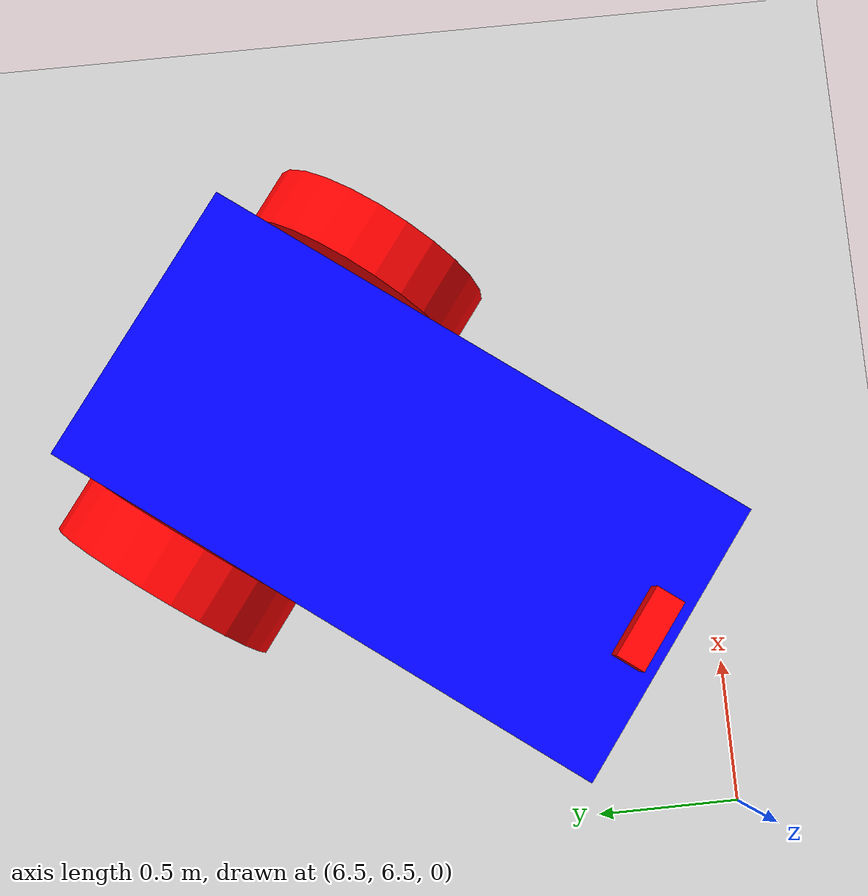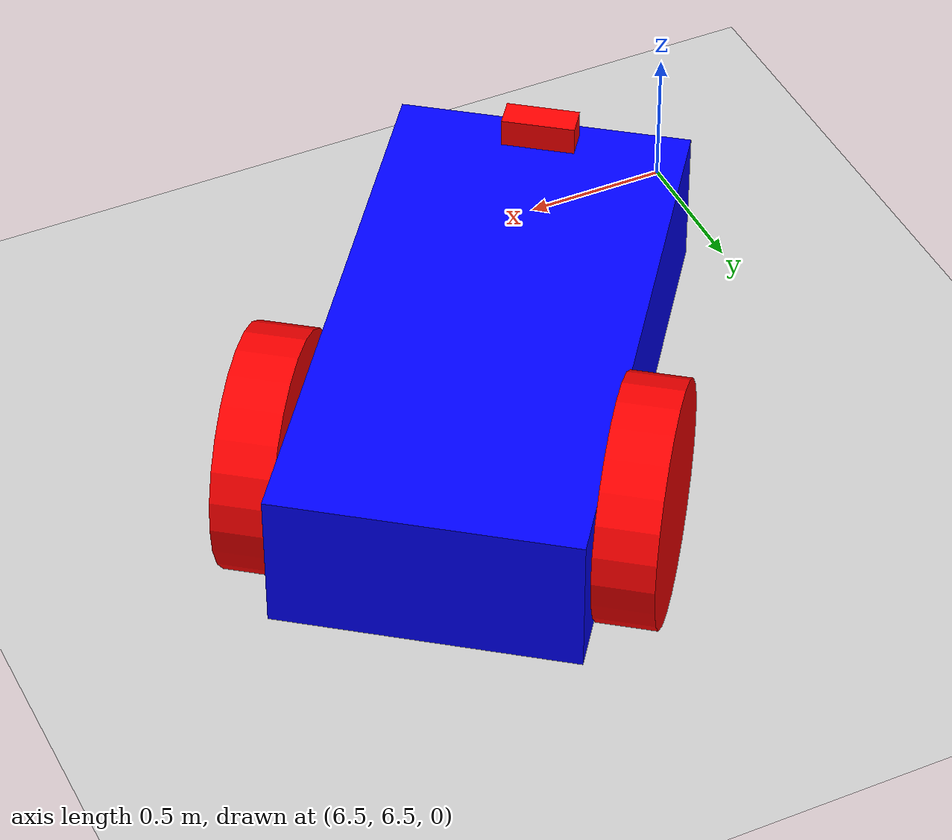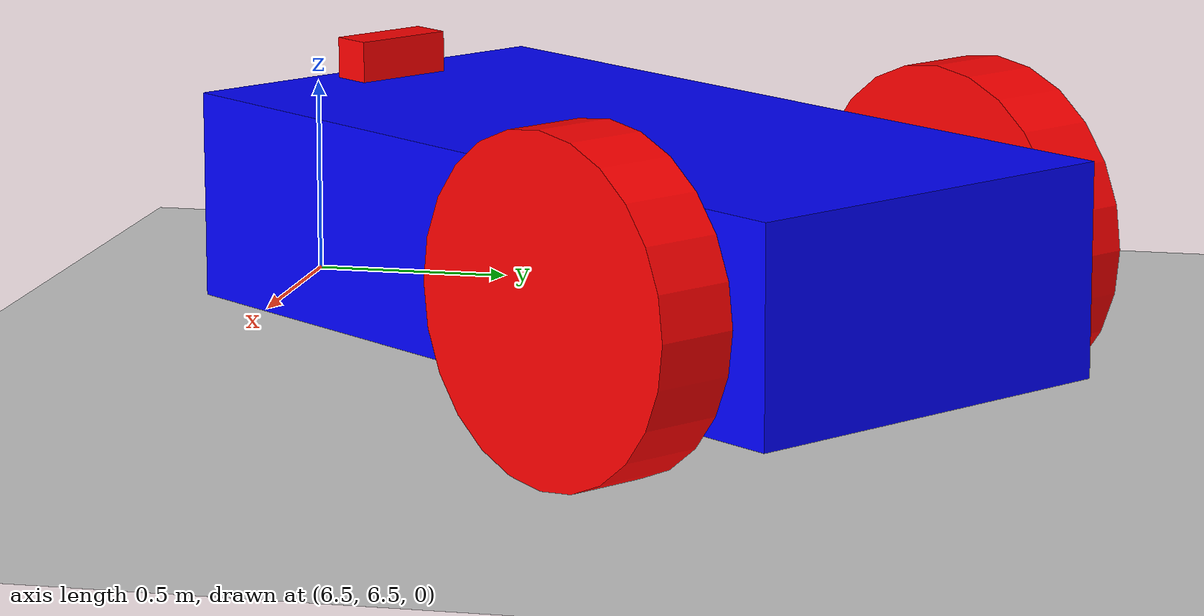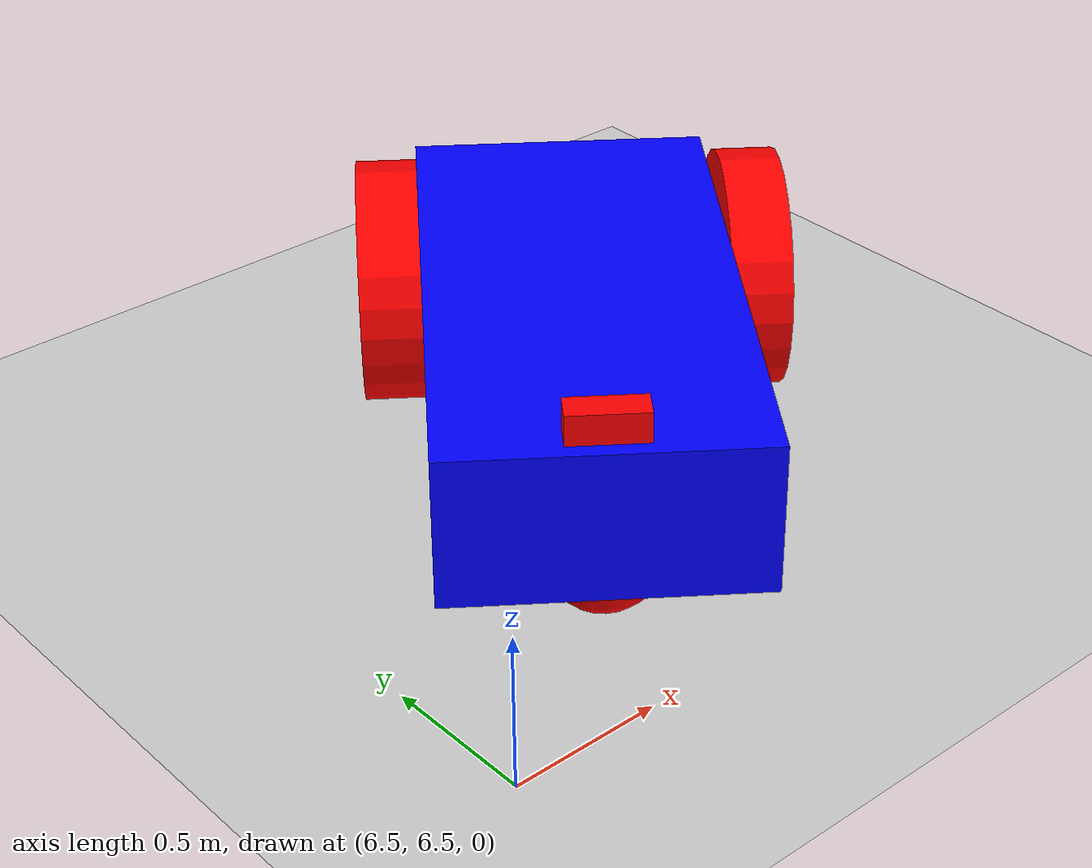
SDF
<?xml version="1.0" ?>
<sdf version="1.8">
    <world name="car_world">
        <physics name="1ms" type="ignored">
            <max_step_size>0.001</max_step_size>
            <real_time_factor>1.0</real_time_factor>
        </physics>

        <plugin
            filename="gz-sim-physics-system"
            name="gz::sim::systems::Physics">
        </plugin>
        <plugin
            filename="gz-sim-user-commands-system"
            name="gz::sim::systems::UserCommands">
        </plugin>
        <plugin
            filename="gz-sim-scene-broadcaster-system"
            name="gz::sim::systems::SceneBroadcaster">
        </plugin>
        <plugin
            filename="gz-sim-sensors-system"
            name="gz::sim::systems::Sensors">
            <render_engine>ogre2</render_engine>
        </plugin>

        <light type="directional" name="sun">
            <cast_shadows>true</cast_shadows>
            <pose>0 0 10 0 0 0</pose>
            <diffuse>0.8 0.8 0.8 1</diffuse>
            <specular>0.2 0.2 0.2 1</specular>
            <attenuation>
                <range>1000</range>
                <constant>0.9</constant>
                <linear>0.01</linear>
                <quadratic>0.001</quadratic>
            </attenuation>
            <direction>-0.5 0.1 -0.9</direction>
        </light>

        <model name="ground_plane">
            <static>true</static>
            <link name="link">
                <collision name="collision">
                    <geometry>
                        <plane>
                            <normal>0 0 1</normal>
                        </plane>
                    </geometry>
                </collision>
                <visual name="visual">
                    <geometry>
                        <plane>
                            <normal>0 0 1</normal>
                            <size>100 100</size>
                        </plane>
                    </geometry>
                    <material>
                        <ambient>0.8 0.8 0.8 1</ambient>
                        <diffuse>0.8 0.8 0.8 1</diffuse>
                        <specular>0.8 0.8 0.8 1</specular>
                    </material>
                </visual>
            </link>
        </model>

        <model name='vehicle_blue' canonical_link='chassis'>
            <pose relative_to='world'>8 8 0 0 0 180</pose>

            <link name='chassis'>
                <pose relative_to='__model__'>0.5 0 0.4 0 0 0</pose>
                <inertial>
                    <mass>1.14395</mass>
                    <inertia>
                        <ixx>0.095329</ixx>
                        <ixy>0</ixy>
                        <ixz>0</ixz>
                        <iyy>0.381317</iyy>
                        <iyz>0</iyz>
                        <izz>0.476646</izz>
                    </inertia>
                </inertial>
                <visual name='visual'>
                    <geometry>
                        <box>
                            <size>2.0 1.0 0.5</size>
                        </box>
                    </geometry>
                    <material>
                        <ambient>0.0 0.0 1.0 1</ambient>
                        <diffuse>0.0 0.0 1.0 1</diffuse>
                        <specular>0.0 0.0 1.0 1</specular>
                    </material>
                </visual>
                <collision name='collision'>
                    <geometry>
                        <box>
                            <size>2.0 1.0 0.5</size>
                        </box>
                    </geometry>
                </collision>

                <sensor name="imu_sensor" type="imu">
                    <always_on>1</always_on>
                    <update_rate>100</update_rate>
                    <visualize>true</visualize>
                    <topic>imu</topic>
                </sensor>

                <sensor name='gpu_lidar' type='gpu_lidar'> <pose relative_to='lidar_frame'>0 0 0 0 0 0</pose>
                    <topic>lidar</topic>
                    <update_rate>10</update_rate>
                    <ray>
                        <scan>
                            <horizontal>
                                <samples>640</samples>
                                <resolution>1</resolution>
                                <min_angle>-1.396263</min_angle>
                                <max_angle>1.396263</max_angle>
                            </horizontal>
                            <vertical>
                                <samples>1</samples>
                                <resolution>0.01</resolution>
                                <min_angle>0</min_angle>
                                <max_angle>0</max_angle>
                            </vertical>
                        </scan>
                        <range>
                            <min>0.08</min>
                            <max>10.0</max>
                            <resolution>0.01</resolution>
                        </range>
                    </ray>
                    <always_on>1</always_on>
                    <visualize>true</visualize>
                </sensor>
            </link>

            <link name='left_wheel'>
                <pose relative_to="chassis">-0.5 0.6 0 -1.5707 0 0</pose>
                <inertial>
                    <mass>1</mass>
                    <inertia>
                        <ixx>0.043333</ixx>
                        <ixy>0</ixy>
                        <ixz>0</ixz>
                        <iyy>0.043333</iyy>
                        <iyz>0</iyz>
                        <izz>0.08</izz>
                    </inertia>
                </inertial>
                <visual name='visual'>
                    <geometry>
                        <cylinder>
                            <radius>0.4</radius>
                            <length>0.2</length>
                        </cylinder>
                    </geometry>
                    <material>
                        <ambient>1.0 0.0 0.0 1</ambient>
                        <diffuse>1.0 0.0 0.0 1</diffuse>
                        <specular>1.0 0.0 0.0 1</specular>
                    </material>
                </visual>
                <collision name='collision'>
                    <geometry>
                        <cylinder>
                            <radius>0.4</radius>
                            <length>0.2</length>
                        </cylinder>
                    </geometry>
                </collision>
            </link>

            <link name='right_wheel'>
                <pose relative_to="chassis">-0.5 -0.6 0 -1.5707 0 0</pose>
                <inertial>
                    <mass>1</mass>
                    <inertia>
                        <ixx>0.043333</ixx>
                        <ixy>0</ixy>
                        <ixz>0</ixz>
                        <iyy>0.043333</iyy>
                        <iyz>0</iyz>
                        <izz>0.08</izz>
                    </inertia>
                </inertial>
                <visual name='visual'>
                    <geometry>
                        <cylinder>
                            <radius>0.4</radius>
                            <length>0.2</length>
                        </cylinder>
                    </geometry>
                    <material>
                        <ambient>1.0 0.0 0.0 1</ambient>
                        <diffuse>1.0 0.0 0.0 1</diffuse>
                        <specular>1.0 0.0 0.0 1</specular>
                    </material>
                </visual>
                <collision name='collision'>
                    <geometry>
                        <cylinder>
                            <radius>0.4</radius>
                            <length>0.2</length>
                        </cylinder>
                    </geometry>
                </collision>
            </link>

            <link name='caster'>
                <pose relative_to='caster_frame'/>
                <inertial>
                    <mass>1</mass>
                    <inertia>
                        <ixx>0.016</ixx>
                        <ixy>0</ixy>
                        <ixz>0</ixz>
                        <iyy>0.016</iyy>
                        <iyz>0</iyz>
                        <izz>0.016</izz>
                    </inertia>
                </inertial>
                <visual name='visual'>
                    <geometry>
                        <sphere>
                            <radius>0.2</radius>
                        </sphere>
                    </geometry>
                    <material>
                        <ambient>1.0 0 0.0 1</ambient>
                        <diffuse>1.0 0 0.0 1</diffuse>
                        <specular>1.0 0 0.0 1</specular>
                    </material>
                </visual>
                <collision name='collision'>
                    <geometry>
                        <sphere>
                            <radius>0.2</radius>
                        </sphere>
                    </geometry>
                </collision>
            </link>

            <link name="cameraMIA">
                <pose relative_to="camera_frame">0 0 0 0 0 0</pose>
                <inertial>
                    <mass>0.1</mass>
                    <inertia>
                        <ixx>0.0001</ixx>
                        <ixy>0</ixy>
                        <ixz>0</ixz>
                        <iyy>0.0001</iyy>
                        <iyz>0</iyz>
                        <izz>0.0001</izz>
                    </inertia>
                </inertial>
                <visual name="visual">
                    <geometry>
                        <box>
                            <size>0.1 0.25 0.1</size>
                        </box>
                    </geometry>
                    <material>
                        <ambient>1 0 0.0 1</ambient>
                        <diffuse>1 0 0.0 1</diffuse>
                        <specular>1.0 0.0 1</specular>
                    </material>
                </visual>
                <collision name="collision">
                    <geometry>
                        <box>
                            <size>0.1 0.25 0.1</size>
                        </box>
                    </geometry>
                </collision>
                <sensor type="camera" name="camera_sensor">
                    <pose>0 0 0 0 0 0</pose>
                    <camera>
                        <horizontal_fov>1.047</horizontal_fov>
                        <image>
                            <width>320</width>
                            <height>240</height>
                        </image>
                        <clip>
                            <near>0.1</near>
                            <far>100</far>
                        </clip>
                        <camera_info_topic>camera/camera_info</camera_info_topic>
                    </camera>
                    <always_on>1</always_on>
                    <update_rate>30</update_rate>
                    <visualize>true</visualize>
                    <topic>camera/image</topic>
                </sensor>
            </link>

            <frame name="caster_frame" attached_to='chassis'>
                <pose>0.8 0 -0.2 0 0 0</pose>
            </frame>

            <frame name="camera_frame" attached_to='chassis'>
                <pose>0.9 0 0.30 0 0 0</pose>
            </frame>

            <joint name='left_wheel_joint' type='revolute'>
                <pose relative_to='left_wheel'/>
                <parent>chassis</parent>
                <child>left_wheel</child>
                <axis>
                    <xyz expressed_in='__model__'>0 1 0</xyz>
                    <limit>
                        <lower>-1.79769e+308</lower>
                        <upper>1.79769e+308</upper>
                    </limit>
                </axis>
            </joint>

            <joint name='right_wheel_joint' type='revolute'>
                <pose relative_to='right_wheel'/>
                <parent>chassis</parent>
                <child>right_wheel</child>
                <axis>
                    <xyz expressed_in='__model__'>0 1 0</xyz>
                    <limit>
                        <lower>-1.79769e+308</lower>
                        <upper>1.79769e+308</upper>
                    </limit>
                </axis>
            </joint>

            <joint name='caster_wheel' type='ball'>
                <parent>chassis</parent>
                <child>caster</child>
            </joint>

            <joint name="camera_joint" type="revolute">  #OSS: TYPE REVOLUTE PERCHè ALMENO COSI /POSE MI DA LA POSIZIONE DELLA CAMERA RISPETTO AL ROBOT
                <pose relative_to='camera_frame'>0 0 0 0 0 0</pose>
                <parent>chassis</parent>
                <child>cameraMIA</child>
                <axis>
                    <xyz expressed_in='__model__'>0 0 1</xyz>
                    <limit>
                        <lower>0.0</lower>
                        <upper>0.0</upper>
                    </limit>
                </axis>
            </joint>

            <plugin
                filename="gz-sim-diff-drive-system"
                name="gz::sim::systems::DiffDrive">
                <left_joint>left_wheel_joint</left_joint>
                <right_joint>right_wheel_joint</right_joint>
                <wheel_separation>1.2</wheel_separation>
                <wheel_radius>0.4</wheel_radius>
                <odom_publish_frequency>1</odom_publish_frequency>
                <topic>cmd_vel</topic>
            </plugin>

            <plugin
                filename="gz-sim-joint-state-publisher-system"
                name="gz::sim::systems::JointStatePublisher">
            </plugin>

            <plugin
                filename="gz-sim-pose-publisher-system"
                name="gz::sim::systems::PosePublisher">
                <publish_link_pose>true</publish_link_pose>
                <publish_sensor_pose>true</publish_sensor_pose>
                <publish_collision_pose>false</publish_collision_pose>
                <publish_visual_pose>false</publish_visual_pose>
                <publish_nested_model_pose>true</publish_nested_model_pose>
                <use_pose_vector_msg>true</use_pose_vector_msg>
                <static_publisher>true</static_publisher>
                <static_update_frequency>10</static_update_frequency>
            </plugin>

        </model>
    </world>
</sdf>
